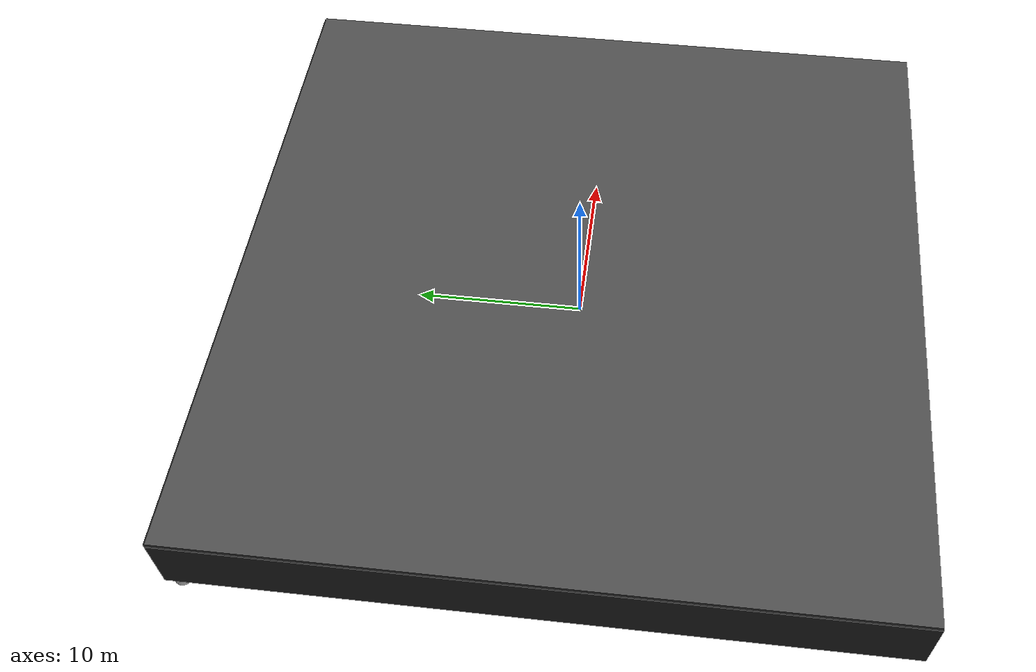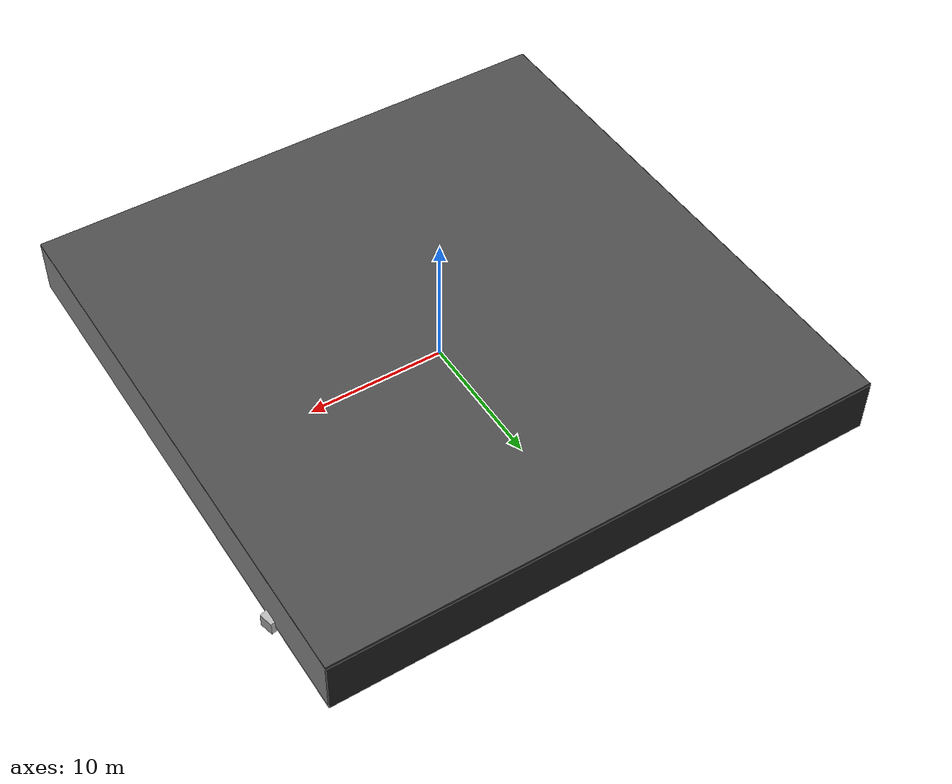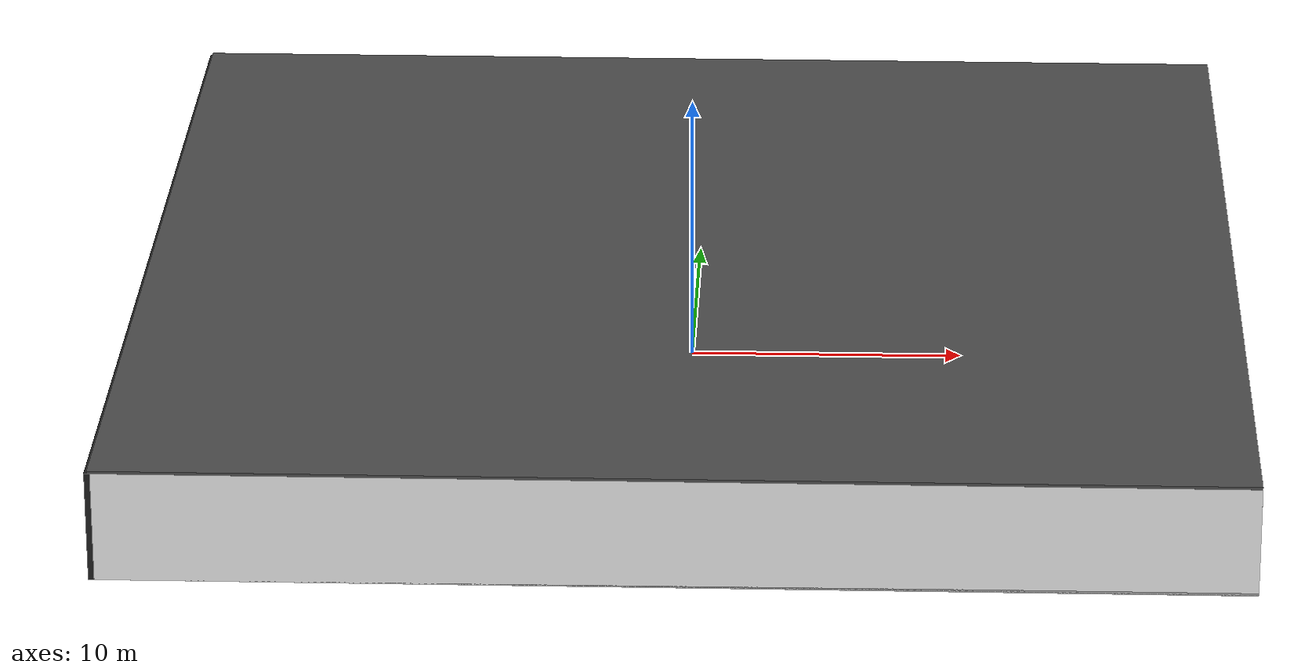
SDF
<sdf version="1.4">
 <world name="default">
  <physics type="ode">
   <max_step_size>0.001</max_step_size>
   <real_time_factor>1</real_time_factor>
   <real_time_update_rate>1000</real_time_update_rate>
   <gravity>0 0 -9.8</gravity>
  </physics>
  <scene><ambient>0.4 0.4 0.4 1</ambient><background>0.7 0.7 0.7 1</background><shadows>1</shadows></scene>
  <model name="Surrounding">
   <static>1</static>
   <link name="Ceiling">
    <collision name="Ceiling_Collision"><geometry><box><size>40 40 0.1</size></box></geometry></collision>
    <visual name="Ceiling_Visual">
     <geometry><box><size>40 40 0.1</size></box></geometry>
     <material>
      <script><uri>file://media/materials/scripts/gazebo.material</uri><name>Gazebo/DarkGrey</name></script>
     </material>
    </visual>
    <pose>0 0 4.05 0 0 0</pose>
   </link>
   <link name="Wall_South">
    <collision name="Wall_South_Collision">
     <geometry><box><size>40 0 4</size></box></geometry>
     <pose>0 0 2 0 -0 0</pose>
    </collision>
    <visual name="Wall_South_Visual">
     <pose>0 0 2 0 -0 0</pose>
     <geometry><box><size>40 0 4</size></box></geometry>
     <material>
      <script><uri>file://media/materials/scripts/gazebo.material</uri><name>Gazebo/WhiteGlow</name></script>
     </material>
    </visual>
    <velocity_decay><linear>0</linear><angular>0</angular></velocity_decay>
    <pose>0 -20 0 0 -0 0</pose>
   </link>
   <link name="Wall_East">
    <collision name="Wall_21_Collision">
     <geometry><box><size>40 0 4</size></box></geometry>
     <pose>0 0 2 0 -0 0</pose>
    </collision>
    <visual name="Wall_21_Visual">
     <pose>0 0 2 0 -0 0</pose>
     <geometry><box><size>40 0 4</size></box></geometry>
     <material>
      <script><uri>file://media/materials/scripts/gazebo.material</uri><name>Gazebo/GreyGradientSky</name></script>
     </material>
    </visual>
    <velocity_decay><linear>0</linear><angular>0</angular></velocity_decay>
    <pose>20 0 0 0 -0 1.5708</pose>
   </link>
   <link name="Wall_North">
    <collision name="Wall_22_Collision">
     <geometry><box><size>40 0.2 4</size></box></geometry>
     <pose>0 0 2 0 -0 0</pose>
    </collision>
    <visual name="Wall_22_Visual">
     <pose>0 0 2 0 -0 0</pose>
     <geometry><box><size>40 0.2 4</size></box></geometry>
     <material>
      <script><uri>file://media/materials/scripts/gazebo.material</uri><name>Gazebo/FlatBlack</name></script>
     </material>
    </visual>
    <velocity_decay><linear>0</linear><angular>0</angular></velocity_decay>
    <pose>0 20 0 0 -0 0</pose>
   </link>
   <link name="Wall_West">
    <collision name="Wall_23_Collision">
     <geometry><box><size>40 0.2 4</size></box></geometry>
     <pose>0 0 2 0 -0 0</pose>
    </collision>
    <visual name="Wall_23_Visual">
     <pose>0 0 2 0 -0 0</pose>
     <geometry><box><size>40 0.2 4</size></box></geometry>
     <material>
      <script><uri>file://media/materials/scripts/gazebo.material</uri><name>Gazebo/FlatBlack</name></script>
     </material>
    </visual>
    <velocity_decay><linear>0</linear><angular>0</angular></velocity_decay>
    <pose>-20 0 0 0 0 -1.5708</pose>
   </link>
   <link name="Ground_link">
    <collision name="collision">
     <pose>0 0 .05 0 -0 0</pose>
     <geometry><box><size>40 40 0.1</size></box></geometry>
    </collision>
    <visual name="visual">
     <pose>0 0 .05 0 -0 0</pose>
     <geometry><box><size>40 40 0.1</size></box></geometry>
     <material>
      <script><uri>file://media/materials/scripts/gazebo.material</uri><name>Gazebo/Pioneer2Body</name></script>
     </material>
    </visual>
   </link>
   <static>1</static>
  </model>
  <spherical_coordinates>
   <surface_model>EARTH_WGS84</surface_model>
   <latitude_deg>0</latitude_deg>
   <longitude_deg>0</longitude_deg>
   <elevation>0</elevation>
   <heading_deg>0</heading_deg>
  </spherical_coordinates>
  <light name="lightball_0" type="diffuse">
   <diffuse>0.8 0.8 0.8 1</diffuse>
   <specular>0.2 0.2 0.2 1</specular>
   <attenuation>
    <range>100</range>
    <constant>0.7</constant>
    <linear>0.01</linear>
    <quadratic>0.001</quadratic>
   </attenuation>
   <direction>-0.5 0.1 -0.9</direction>
   <pose>10.4407534163 -3.23632373912 3.82854528551 0 0 0</pose>
  </light>
  <light name="lightball_1" type="diffuse">
   <diffuse>0.8 0.8 0.8 1</diffuse>
   <specular>0.2 0.2 0.2 1</specular>
   <attenuation>
    <range>100</range>
    <constant>0.7</constant>
    <linear>0.01</linear>
    <quadratic>0.001</quadratic>
   </attenuation>
   <direction>-0.5 0.1 -0.9</direction>
   <pose>5.86518755956 -18.7053007225 2.63854127451 0 0 0</pose>
  </light>
  <light name="lightball_2" type="diffuse">
   <diffuse>0.8 0.8 0.8 1</diffuse>
   <specular>0.2 0.2 0.2 1</specular>
   <attenuation>
    <range>100</range>
    <constant>0.7</constant>
    <linear>0.01</linear>
    <quadratic>0.001</quadratic>
   </attenuation>
   <direction>-0.5 0.1 -0.9</direction>
   <pose>-2.65701620703 -16.6020839455 0.932174022665 0 0 0</pose>
  </light>
  <light name="lightball_3" type="diffuse">
   <diffuse>0.8 0.8 0.8 1</diffuse>
   <specular>0.2 0.2 0.2 1</specular>
   <attenuation>
    <range>100</range>
    <constant>0.7</constant>
    <linear>0.01</linear>
    <quadratic>0.001</quadratic>
   </attenuation>
   <direction>-0.5 0.1 -0.9</direction>
   <pose>15.7068819347 10.6788750103 1.18418130283 0 0 0</pose>
  </light>
  <light name="lightball_4" type="diffuse">
   <diffuse>0.8 0.8 0.8 1</diffuse>
   <specular>0.2 0.2 0.2 1</specular>
   <attenuation>
    <range>100</range>
    <constant>0.7</constant>
    <linear>0.01</linear>
    <quadratic>0.001</quadratic>
   </attenuation>
   <direction>-0.5 0.1 -0.9</direction>
   <pose>-14.1341533282 -0.199566790504 3.82709751019 0 0 0</pose>
  </light>
  <light name="lightball_5" type="diffuse">
   <diffuse>0.8 0.8 0.8 1</diffuse>
   <specular>0.2 0.2 0.2 1</specular>
   <attenuation>
    <range>100</range>
    <constant>0.7</constant>
    <linear>0.01</linear>
    <quadratic>0.001</quadratic>
   </attenuation>
   <direction>-0.5 0.1 -0.9</direction>
   <pose>-1.03787136359 16.9519264083 1.0689014779 0 0 0</pose>
  </light>
  <light name="lightball_6" type="diffuse">
   <diffuse>0.8 0.8 0.8 1</diffuse>
   <specular>0.2 0.2 0.2 1</specular>
   <attenuation>
    <range>100</range>
    <constant>0.7</constant>
    <linear>0.01</linear>
    <quadratic>0.001</quadratic>
   </attenuation>
   <direction>-0.5 0.1 -0.9</direction>
   <pose>-4.91796914281 8.2677182724 1.9940462748 0 0 0</pose>
  </light>
  <light name="lightball_7" type="diffuse">
   <diffuse>0.8 0.8 0.8 1</diffuse>
   <specular>0.2 0.2 0.2 1</specular>
   <attenuation>
    <range>100</range>
    <constant>0.7</constant>
    <linear>0.01</linear>
    <quadratic>0.001</quadratic>
   </attenuation>
   <direction>-0.5 0.1 -0.9</direction>
   <pose>-3.89895804677 11.483757763 1.29080561925 0 0 0</pose>
  </light>
  <include>
   <uri>model://textured_shapes</uri>
   <pose>-17.0306375221 5.7737094842 0 0 0 3.03882841673</pose>
  </include>
  <include>
   <uri>model://textured_shapes</uri>
   <pose>-18.2089373723 18.6591101383 0 0 0 1.18741690053</pose>
  </include>
  <include>
   <uri>model://robocup_3Dsim_goal</uri>
   <pose>-11.7246326743 7.05028355369 0 0 0 2.09410439235</pose>
  </include>
  <include><uri>model://cabinet</uri><pose>-7.68088572868 -9.44295426133 0 0 0 0.485963179909</pose></include>
  <include>
   <uri>model://robocup_3Dsim_goal</uri>
   <pose>-7.55227405942 3.22622841093 0 0 0 2.35108023187</pose>
  </include>
  <include>
   <uri>model://textured_shapes</uri>
   <pose>-5.24714897281 -0.342947994405 0 0 0 2.78944754841</pose>
  </include>
  <include><uri>model://cabinet</uri><pose>-6.61743266241 5.77105466553 0 0 0 2.95950178494</pose></include>
  <include>
   <uri>model://robocup_3Dsim_goal</uri>
   <pose>-2.60997621278 -18.3320621197 0 0 0 1.00065414923</pose>
  </include>
  <include><uri>model://cabinet</uri><pose>0.162632898356 -4.83484262964 0 0 0 1.67327687026</pose></include>
  <include>
   <uri>model://construction_cone</uri>
   <pose>-0.266498866985 10.3429719082 0 0 0 2.32506941259</pose>
  </include>
  <include>
   <uri>model://textured_shapes</uri>
   <pose>2.39319210294 0.0275152384904 0 0 0 0.879645852553</pose>
  </include>
  <include>
   <uri>model://robocup_3Dsim_goal</uri>
   <pose>4.33320049452 9.89945856146 0 0 0 1.05683340494</pose>
  </include>
  <include><uri>model://cabinet</uri><pose>3.16942257382 18.7977731281 0 0 0 2.03796618673</pose></include>
  <include><uri>model://cabinet</uri><pose>16.1946988005 -6.54467594511 0 0 0 1.49007461282</pose></include>
  <include><uri>model://table</uri><pose>16.6568669419 2.37139578422 0 0 0 2.8979479956</pose></include>
  <include><uri>model://cabinet</uri><pose>16.6144508944 11.6017483454 0 0 0 1.78466980626</pose></include>
  <include>
   <uri>model://textured_shapes</uri>
   <pose>18.4614846227 12.6948851424 0 0 0 1.81201339658</pose>
  </include>
 </world>
</sdf>

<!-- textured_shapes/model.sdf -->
<sdf version="1.6">
  <model name="textured_shapes">
    <pose>0 0 0.5 0 0 0</pose>
    <link name="box">
      <pose>0 -1.5 0 0 0 0</pose>
      <collision name="collision">
        <geometry>
          <box>
            <size>1 1 1</size>
          </box>
        </geometry>
      </collision>
      <visual name="visual">
        <geometry>
          <box>
            <size>1 1 1</size>
          </box>
        </geometry>
        <material>
          <script>
            <uri>model://../model_source/models/textured_shapes/materials/scripts</uri>
            <uri>model://../model_source/models/textured_shapes/materials/textures</uri>
            <name>TexturedShape/Squares</name>
          </script>
        </material>
      </visual>
    </link>
    <link name="sphere">
      <collision name="collision">
        <geometry>
          <sphere>
            <radius>0.5</radius>
          </sphere>
        </geometry>
      </collision>
      <visual name="visual">
        <geometry>
          <sphere>
            <radius>0.5</radius>
          </sphere>
        </geometry>
        <material>
          <script>
            <uri>model://../model_source/models/textured_shapes/materials/scripts</uri>
            <uri>model://../model_source/models/textured_shapes/materials/textures</uri>
            <name>TexturedShape/Squares</name>
          </script>
        </material>
      </visual>
    </link>
    <link name="cylinder">
      <pose>0 1.5 0 0 0 0</pose>
      <collision name="collision">
        <geometry>
          <cylinder>
            <radius>0.5</radius>
            <length>1</length>
          </cylinder>
        </geometry>
      </collision>
      <visual name="visual">
        <geometry>
          <cylinder>
            <radius>0.5</radius>
            <length>1</length>
          </cylinder>
        </geometry>
        <material>
          <script>
            <uri>model://../model_source/models/textured_shapes/materials/scripts</uri>
            <uri>model://../model_source/models/textured_shapes/materials/textures</uri>
            <name>TexturedShape/Squares</name>
          </script>
        </material>
      </visual>
    </link>
  </model>
</sdf>

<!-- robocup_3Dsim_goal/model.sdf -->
<sdf version="1.5">
  <model name="robocup_3d_goal">
    <static>true</static>
    <link name="left_post">
      <pose>0 1.05 0.45 0 0 0</pose>
      <collision name="collision">
        <geometry>
          <cylinder>
            <radius>0.05</radius>
            <length>0.9</length>
          </cylinder>
        </geometry>
      </collision>
      <visual name="visual">
        <geometry>
          <cylinder>
            <radius>0.05</radius>
            <length>0.9</length>
          </cylinder>
        </geometry>
        <material>
          <script>
            <uri>file://media/materials/scripts/gazebo.material</uri>
            <name>Gazebo/ZincYellow</name>
          </script>
        </material>
      </visual>
    </link>
    <link name="left_support_horiz_lower">
      <pose>0.30 1.05 0.01 0 0 0</pose>
      <collision name="collision">
        <geometry>
          <box>
            <size>0.50 0.02 0.02</size>
          </box>
        </geometry>
      </collision>
      <visual name="visual">
        <geometry>
          <box>
            <size>0.50 0.02 0.02</size>
          </box>
        </geometry>
        <material>
          <script>
            <uri>file://media/materials/scripts/gazebo.material</uri>
            <name>Gazebo/White</name>
          </script>
        </material>
      </visual>
    </link>
    <link name="left_support_horiz_upper">
      <pose>0.30 1.05 0.79 0 0 0</pose>
      <collision name="collision">
        <geometry>
          <box>
            <size>0.50 0.02 0.02</size>
          </box>
        </geometry>
      </collision>
      <visual name="visual">
        <geometry>
          <box>
            <size>0.50 0.02 0.02</size>
          </box>
        </geometry>
        <material>
          <script>
            <uri>file://media/materials/scripts/gazebo.material</uri>
            <name>Gazebo/White</name>
          </script>
        </material>
      </visual>
    </link>
    <link name="left_support_vertical">
      <pose>0.56 1.05 0.4 0 1.5708 0</pose>
      <collision name="collision">
        <geometry>
          <box>
            <size>0.80 0.02 0.02</size>
          </box>
        </geometry>
      </collision>
      <visual name="visual">
        <geometry>
          <box>
            <size>0.80 0.02 0.02</size>
          </box>
        </geometry>
        <material>
          <script>
            <uri>file://media/materials/scripts/gazebo.material</uri>
            <name>Gazebo/White</name>
          </script>
        </material>
      </visual>
    </link>
    <link name="right_support_horiz_lower">
      <pose>0.30 -1.05 0.01 0 0 0</pose>
      <collision name="collision">
        <geometry>
          <box>
            <size>0.50 0.02 0.02</size>
          </box>
        </geometry>
      </collision>
      <visual name="visual">
        <geometry>
          <box>
            <size>0.50 0.02 0.02</size>
          </box>
        </geometry>
        <material>
          <script>
            <uri>file://media/materials/scripts/gazebo.material</uri>
            <name>Gazebo/White</name>
          </script>
        </material>
      </visual>
    </link>
    <link name="right_support_horiz_upper">
      <pose>0.30 -1.05 0.79 0 0 0</pose>
      <collision name="collision">
        <geometry>
          <box>
            <size>0.50 0.02 0.02</size>
          </box>
        </geometry>
      </collision>
      <visual name="visual">
        <geometry>
          <box>
            <size>0.50 0.02 0.02</size>
          </box>
        </geometry>
        <material>
          <script>
            <uri>file://media/materials/scripts/gazebo.material</uri>
            <name>Gazebo/White</name>
          </script>
        </material>
      </visual>
    </link>
    <link name="right_support_vertical">
      <pose>0.56 -1.05 0.4 0 1.5708 0</pose>
      <collision name="collision">
        <geometry>
          <box>
            <size>0.80 0.02 0.02</size>
          </box>
        </geometry>
      </collision>
      <visual name="visual">
        <geometry>
          <box>
            <size>0.80 0.02 0.02</size>
          </box>
        </geometry>
        <material>
          <script>
            <uri>file://media/materials/scripts/gazebo.material</uri>
            <name>Gazebo/White</name>
          </script>
        </material>
      </visual>
    </link>
    <link name="center_support_horiz_lower">
      <pose>0.56 0 0.01 0 1.5708 0</pose>
      <collision name="collision">
        <geometry>
          <box>
            <size>0.02 2.08 0.02</size>
          </box>
        </geometry>
      </collision>
      <visual name="visual">
        <geometry>
          <box>
            <size>0.02 2.08 0.02</size>
          </box>
        </geometry>
        <material>
          <script>
            <uri>file://media/materials/scripts/gazebo.material</uri>
            <name>Gazebo/White</name>
          </script>
        </material>
      </visual>
    </link>
    <link name="center_support_horiz_upper">
      <pose>0.56 0 0.79 0 1.5708 0</pose>
      <collision name="collision">
        <geometry>
          <box>
            <size>0.02 2.08 0.02</size>
          </box>
        </geometry>
      </collision>
      <visual name="visual">
        <geometry>
          <box>
            <size>0.02 2.08 0.02</size>
          </box>
        </geometry>
        <material>
          <script>
            <uri>file://media/materials/scripts/gazebo.material</uri>
            <name>Gazebo/White</name>
          </script>
        </material>
      </visual>
    </link>
    <link name="right_post">
      <pose>0 -1.05 0.45 0 0 0</pose>
      <collision name="collision">
        <geometry>
          <cylinder>
            <radius>0.05</radius>
            <length>0.9</length>
          </cylinder>
        </geometry>
      </collision>
      <visual name="visual">
        <geometry>
          <cylinder>
            <radius>0.05</radius>
            <length>0.9</length>
          </cylinder>
        </geometry>
        <material>
          <script>
            <uri>file://media/materials/scripts/gazebo.material</uri>
            <name>Gazebo/ZincYellow</name>
          </script>
        </material>
      </visual>
    </link>
    <link name="crossbar">
      <pose>0 0 0.85 1.57 1.57 0</pose>
      <collision name="collision">
        <geometry>
          <cylinder>
            <radius>0.05</radius>
            <length>2.0</length>
          </cylinder>
        </geometry>
      </collision>
      <visual name="visual">
        <geometry>
          <cylinder>
            <radius>0.05</radius>
            <length>2.0</length>
          </cylinder>
        </geometry>
        <material>
          <script>
            <uri>file://media/materials/scripts/gazebo.material</uri>
            <name>Gazebo/ZincYellow</name>
          </script>
        </material>
      </visual>
    </link>
    <link name="center_net">
      <pose>0.56 0 0.40 0 0 0</pose>
      <collision name="collision">
        <geometry>
          <box>
            <size>0.01 2.1 0.80</size>
          </box>
        </geometry>
      </collision>
      <visual name="visual">
        <geometry>
          <box>
            <size>0.01 2.1 0.80</size>
          </box>
        </geometry>
        <material>
          <script>
            <uri>model://../model_source/models/robocup09_spl_field/materials/scripts/</uri>
            <uri>model://../model_source/models/robocup09_spl_field/materials/textures/</uri>
            <name>RoboCup/Net</name>
          </script>
        </material>
      </visual>
    </link>
    <link name="left_net">
      <pose>0.30 1.05 0.40 0 0 0</pose>
      <collision name="collision">
        <geometry>
          <box>
            <size>0.50 0.01 0.76</size>
          </box>
        </geometry>
      </collision>
      <visual name="visual">
        <geometry>
          <box>
            <size>0.50 0.01 0.76</size>
          </box>
        </geometry>
        <material>
          <script>
            <uri>model://../model_source/models/robocup09_spl_field/materials/scripts/</uri>
            <uri>model://../model_source/models/robocup09_spl_field/materials/textures/</uri>
            <name>RoboCup/Net</name>
          </script>
        </material>
      </visual>
    </link>
    <link name="right_net">
      <pose>0.30 -1.05 0.40 0 0 0</pose>
      <collision name="collision">
        <geometry>
          <box>
            <size>0.50 0.01 0.76</size>
          </box>
        </geometry>
      </collision>
      <visual name="visual">
        <geometry>
          <box>
            <size>0.50 0.01 0.76</size>
          </box>
        </geometry>
        <material>
          <script>
            <uri>model://../model_source/models/robocup09_spl_field/materials/scripts/</uri>
            <uri>model://../model_source/models/robocup09_spl_field/materials/textures/</uri>
            <name>RoboCup/Net</name>
          </script>
        </material>
      </visual>
    </link>
  </model>
</sdf>

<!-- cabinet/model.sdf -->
<sdf version="1.5">
  <model name="cabinet">
    <static>true</static>
    <link name="cabinet_bottom_plate">
      <inertial>
        <pose>0 0 -1 0 0 0</pose>
        <inertia>
          <ixx>2.050000</ixx>
          <ixy>0</ixy>
          <ixz>0</ixz>
          <iyy>2.050000</iyy>
          <iyz>0</iyz>
          <izz>2.050000</izz>
        </inertia>
        <mass>25.000000</mass>
      </inertial>
      <collision name="cabinet_bottom_plate_geom">
        <pose>0 0 0.010000 0 0 0</pose>
        <geometry>
          <box>
            <size>0.450000 0.450000 0.020000</size>
          </box>
        </geometry>
      </collision>
      <visual name="cabinet_bottom_plate_geom_visual">
        <pose>0 0 0.010000 0 0 0</pose>
        <geometry>
          <box>
            <size>0.450000 0.450000 0.020000</size>
          </box>
        </geometry>
        <material>
          <script>
            <uri>model://media/materials/scripts/gazebo.material</uri>
            <name>Gazebo/Wood</name>
          </script>
        </material>
      </visual>
      <collision name="cabinet_bottom_plate_geom_cabinet_back_plate">
        <pose>0.235000 0 0.510000 0 0 0</pose>
        <geometry>
          <box>
            <size>0.020000 0.450000 1.020000</size>
          </box>
        </geometry>
      </collision>
      <visual name="cabinet_bottom_plate_geom_cabinet_back_plate_visual">
        <pose>0.235000 0 0.510000 0 0 0</pose>
        <geometry>
          <box>
            <size>0.020000 0.450000 1.020000</size>
          </box>
        </geometry>
        <material>
          <script>
            <uri>model://media/materials/scripts/gazebo.material</uri>
            <name>Gazebo/Wood</name>
          </script>
        </material>
      </visual>
      <collision name="cabinet_bottom_plate_geom_cabinet_left_plate">
        <pose>0 0.235000 0.510000 0 0 0</pose>
        <geometry>
          <box>
            <size>0.450000 0.020000 1.020000</size>
          </box>
        </geometry>
      </collision>
      <visual name="cabinet_bottom_plate_geom_cabinet_left_plate_visual">
        <pose>0 0.235000 0.510000 0 0 0</pose>
        <geometry>
          <box>
            <size>0.450000 0.020000 1.020000</size>
          </box>
        </geometry>
        <material>
          <script>
            <uri>model://media/materials/scripts/gazebo.material</uri>
            <name>Gazebo/Wood</name>
          </script>
        </material>
      </visual>
      <collision name="cabinet_bottom_plate_geom_cabinet_middle_plate">
        <pose>0 0 0.510000 0 0 0</pose>
        <geometry>
          <box>
            <size>0.450000 0.450000 0.020000</size>
          </box>
        </geometry>
      </collision>
      <visual name="cabinet_bottom_plate_geom_cabinet_middle_plate_visual">
        <pose>0 0 0.510000 0 0 0</pose>
        <geometry>
          <box>
            <size>0.450000 0.450000 0.020000</size>
          </box>
        </geometry>
        <material>
          <script>
            <uri>model://media/materials/scripts/gazebo.material</uri>
            <name>Gazebo/Wood</name>
          </script>
        </material>
      </visual>
      <collision name="cabinet_bottom_plate_geom_cabinet_right_plate">
        <pose>0 -0.235000 0.510000 0 0 0</pose>
        <geometry>
          <box>
            <size>0.450000 0.020000 1.020000</size>
          </box>
        </geometry>
      </collision>
      <visual name="cabinet_bottom_plate_geom_cabinet_right_plate_visual">
        <pose>0 -0.235000 0.510000 0 0 0</pose>
        <geometry>
          <box>
            <size>0.450000 0.020000 1.020000</size>
          </box>
        </geometry>
        <material>
          <script>
            <uri>model://media/materials/scripts/gazebo.material</uri>
            <name>Gazebo/Wood</name>
          </script>
        </material>
      </visual>
      <collision name="cabinet_bottom_plate_geom_cabinet_top_plate">
        <pose>0 0 1.010000 0 0 0</pose>
        <geometry>
          <box>
            <size>0.450000 0.450000 0.020000</size>
          </box>
        </geometry>
      </collision>
      <visual name="cabinet_bottom_plate_geom_cabinet_top_plate_visual">
        <pose>0 0 1.010000 0 0 0</pose>
        <geometry>
          <box>
            <size>0.450000 0.450000 0.020000</size>
          </box>
        </geometry>
        <material>
          <script>
            <uri>model://media/materials/scripts/gazebo.material</uri>
            <name>Gazebo/Wood</name>
          </script>
        </material>
      </visual>
    </link>
  </model>
</sdf>

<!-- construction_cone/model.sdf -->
<sdf version="1.5">
  <model name="Construction Cone">
    <link name="link">
      <collision name="collision">
        <geometry>
          <mesh>
            <scale>10 10 10</scale>
            <uri>file://isr-testbed/construction_cone/meshes/construction_cone.dae</uri>
          </mesh>
        </geometry>
      </collision>
      <visual name="visual">
        <geometry>
          <mesh>
            <scale>10 10 10</scale>
            <uri>file://isr-testbed/construction_cone/meshes/construction_cone.dae</uri>
          </mesh>
        </geometry>
      </visual>
    </link>
  </model>
</sdf>

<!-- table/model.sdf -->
<sdf version="1.5">
  <model name="table">
    <static>true</static>
    <link name="link">
      <collision name="surface">
        <pose>0 0 1.0 0 0 0</pose>
        <geometry>
          <box>
            <size>1.5 0.8 0.03</size>
          </box>
        </geometry>
        <surface>
          <friction>
            <ode>
              <mu>0.6</mu>
              <mu2>0.6</mu2>
            </ode>
          </friction>
        </surface>
      </collision>
      <visual name="visual1">
        <pose>0 0 1.0 0 0 0</pose>
        <geometry>
          <box>
            <size>1.5 0.8 0.03</size>
          </box>
        </geometry>
        <material>
          <script>
            <uri>model://media/materials/scripts/gazebo.material</uri>
            <name>Gazebo/Wood</name>
          </script>
        </material>
      </visual>
      <collision name="front_left_leg">
        <pose>0.68 0.38 0.5 0 0 0</pose>
        <geometry>
          <cylinder>
            <radius>0.02</radius>
            <length>1.0</length>
          </cylinder>
        </geometry>
      </collision>
      <visual name="front_left_leg">
        <pose>0.68 0.38 0.5 0 0 0</pose>
        <geometry>
          <cylinder>
            <radius>0.02</radius>
            <length>1.0</length>
          </cylinder>
        </geometry>
        <material>
          <script>
            <uri>model://media/materials/scripts/gazebo.material</uri>
            <name>Gazebo/Grey</name>
          </script>
        </material>
      </visual>
      <collision name="front_right_leg">
        <pose>0.68 -0.38 0.5 0 0 0</pose>
        <geometry>
          <cylinder>
            <radius>0.02</radius>
            <length>1.0</length>
          </cylinder>
        </geometry>
      </collision>
      <visual name="front_right_leg">
        <pose>0.68 -0.38 0.5 0 0 0</pose>
        <geometry>
          <cylinder>
            <radius>0.02</radius>
            <length>1.0</length>
          </cylinder>
        </geometry>
        <material>
          <script>
            <uri>model://media/materials/scripts/gazebo.material</uri>
            <name>Gazebo/Grey</name>
          </script>
        </material>
      </visual>
      <collision name="back_right_leg">
        <pose>-0.68 -0.38 0.5 0 0 0</pose>
        <geometry>
          <cylinder>
            <radius>0.02</radius>
            <length>1.0</length>
          </cylinder>
        </geometry>
      </collision>
      <visual name="back_right_leg">
        <pose>-0.68 -0.38 0.5 0 0 0</pose>
        <geometry>
          <cylinder>
            <radius>0.02</radius>
            <length>1.0</length>
          </cylinder>
        </geometry>
        <material>
          <script>
            <uri>model://media/materials/scripts/gazebo.material</uri>
            <name>Gazebo/Grey</name>
          </script>
        </material>
      </visual>
      <collision name="back_left_leg">
        <pose>-0.68 0.38 0.5 0 0 0</pose>
        <geometry>
          <cylinder>
            <radius>0.02</radius>
            <length>1.0</length>
          </cylinder>
        </geometry>
      </collision>
      <visual name="back_left_leg">
        <pose>-0.68 0.38 0.5 0 0 0</pose>
        <geometry>
          <cylinder>
            <radius>0.02</radius>
            <length>1.0</length>
          </cylinder>
        </geometry>
        <material>
          <script>
            <uri>model://media/materials/scripts/gazebo.material</uri>
            <name>Gazebo/Grey</name>
          </script>
        </material>
      </visual>
    </link>
  </model>
</sdf>
